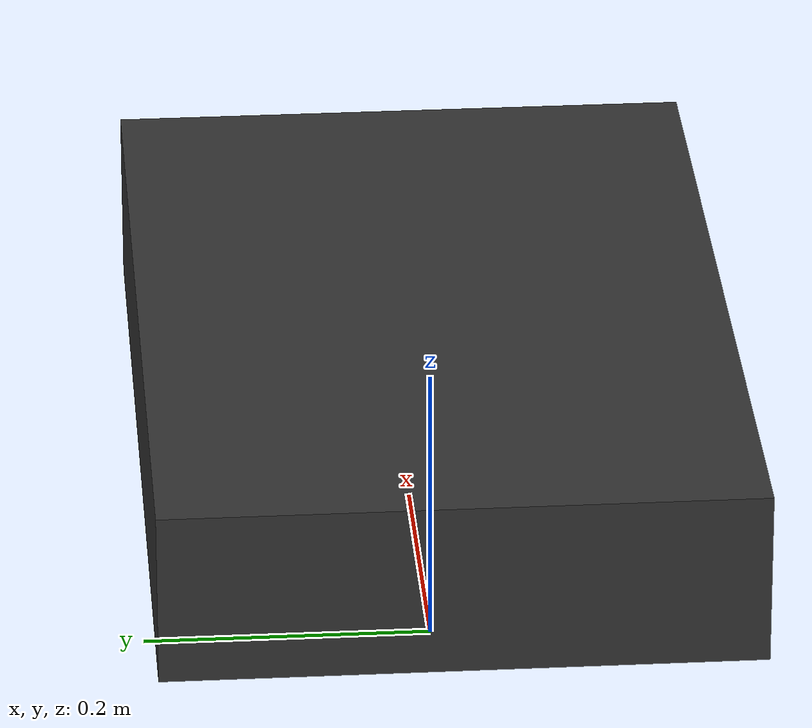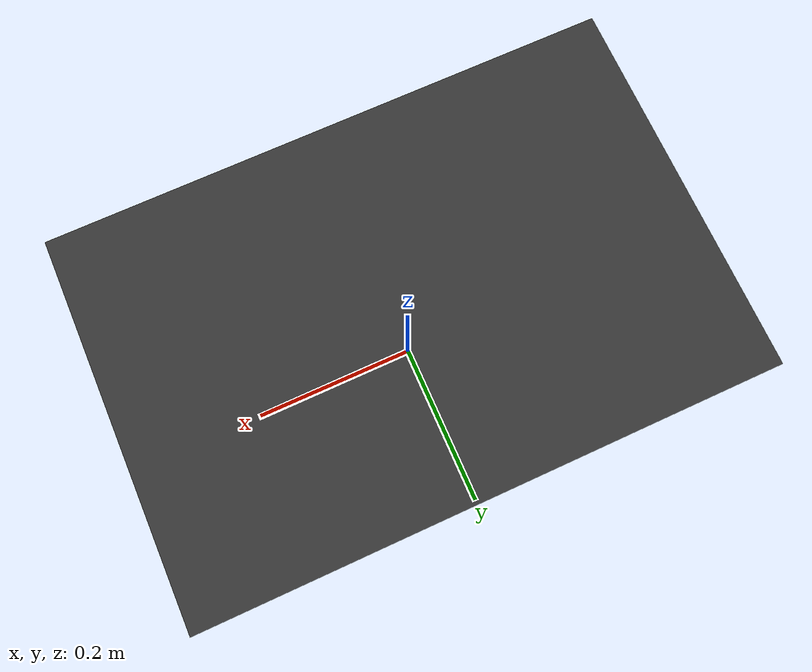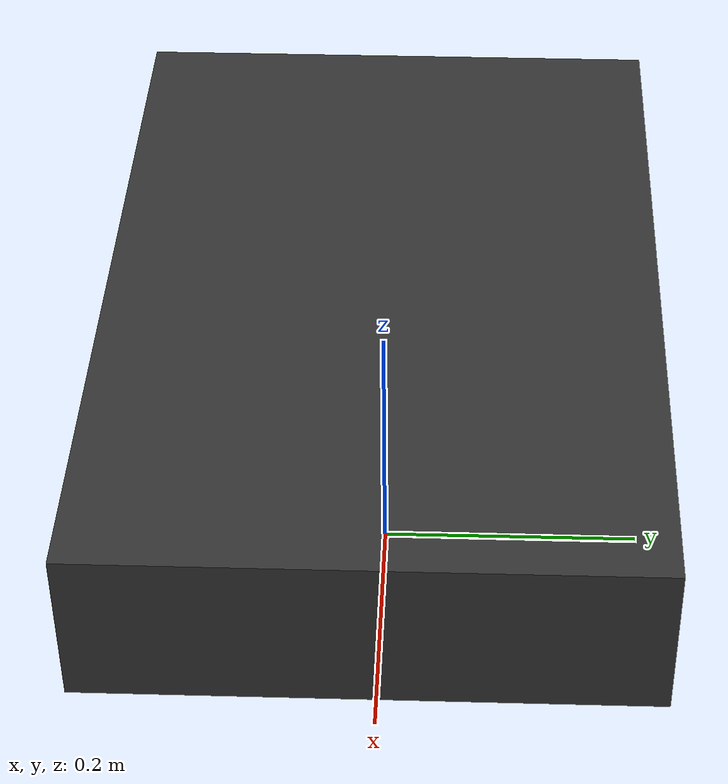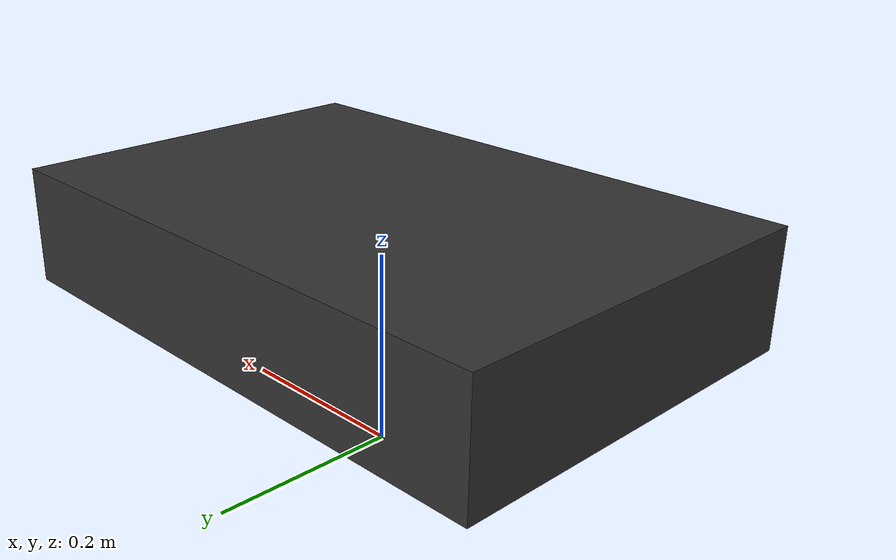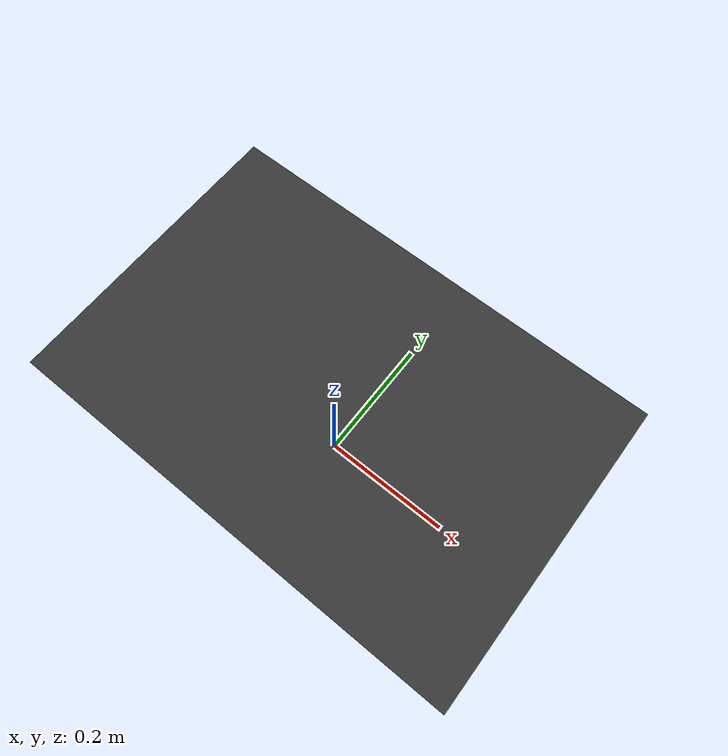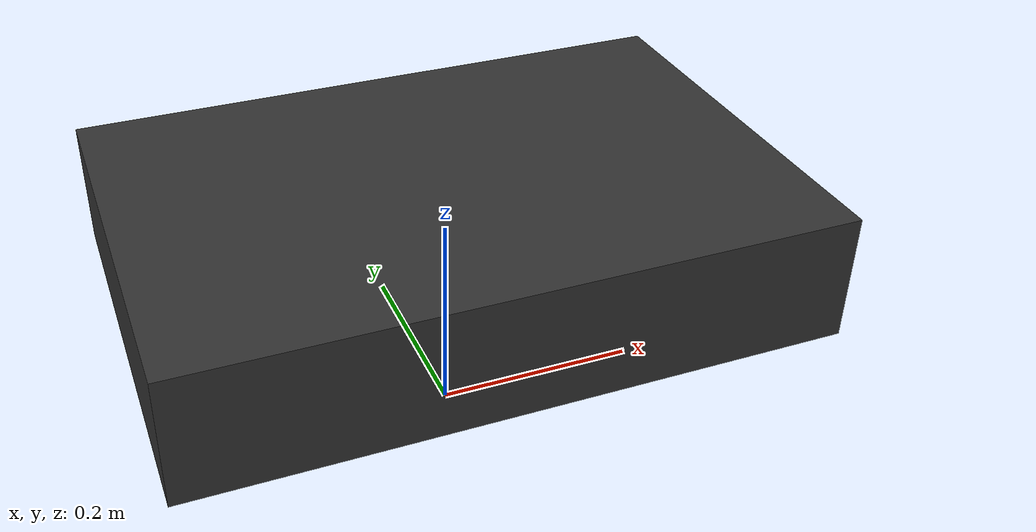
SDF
<?xml version="1.0" ?>
<sdf version="1.10" xmlns:gz="http://gazebosim.org/schemas">
  <world name="led_system_example">
    <plugin
      filename="gz-sim-scene-broadcaster-system"
      name="gz::sim::systems::SceneBroadcaster"/>

    <model name="foxy">
      <static>true</static>
      <pose>0 0 0.2 0 0 0</pose>

      <link name="base_link">
        <visual name="body_visual">
          <geometry>
            <box><size>0.6 0.4 0.12</size></box>
          </geometry>
          <material>
            <ambient>0.1 0.1 0.1 1</ambient>
            <diffuse>0.2 0.2 0.2 1</diffuse>
          </material>
        </visual>

        <sensor name="leds" type="custom" gz:type="led">
          <pose>0 0 0 0 0 0</pose>
          <always_on>true</always_on>
          <update_rate>0</update_rate>

          <plugin
            filename="foxy_gz_led_system"
            name="foxy_gz_plugins::LedSystem">
            <publish_state>true</publish_state>
            <topic_prefix>/demo</topic_prefix>

            <channel name="front_left">
              <default_state><color>1 1 1 0</color></default_state>
              <led name="front_left_led">
                <pose>0.31 0.14 0.08 0 0 0</pose>
                <radius>0.03</radius>
                <color>1 1 1</color>
                <range>2.0</range>
                <gain>1.0</gain>
              </led>
            </channel>

            <channel name="front_right">
              <default_state><color>1 1 1 0</color></default_state>
              <led name="front_right_led">
                <pose>0.31 -0.14 0.08 0 0 0</pose>
                <radius>0.03</radius>
                <color>1 1 1</color>
                <range>2.0</range>
                <gain>1.0</gain>
              </led>
            </channel>

            <channel name="rear_left">
              <default_state><color>1 0 0 0</color></default_state>
              <led name="rear_left_led">
                <pose>-0.31 0.14 0.08 0 0 0</pose>
                <radius>0.03</radius>
                <color>1 0 0</color>
                <range>2.0</range>
                <gain>1.0</gain>
              </led>
            </channel>

            <channel name="rear_right">
              <default_state><color>1 0 0 0</color></default_state>
              <led name="rear_right_led">
                <pose>-0.31 -0.14 0.08 0 0 0</pose>
                <radius>0.03</radius>
                <color>1 0 0</color>
                <range>2.0</range>
                <gain>1.0</gain>
              </led>
            </channel>

            <channel name="top">
              <default_state><color>1 1 1 0</color></default_state>
              <led name="top_led">
                <pose>0 0 0.12 0 0 0</pose>
                <radius>0.035</radius>
                <color>1 1 1</color>
                <range>3.0</range>
                <gain>1.2</gain>
              </led>
            </channel>
          </plugin>
        </sensor>
      </link>
    </model>
  </world>
</sdf>
